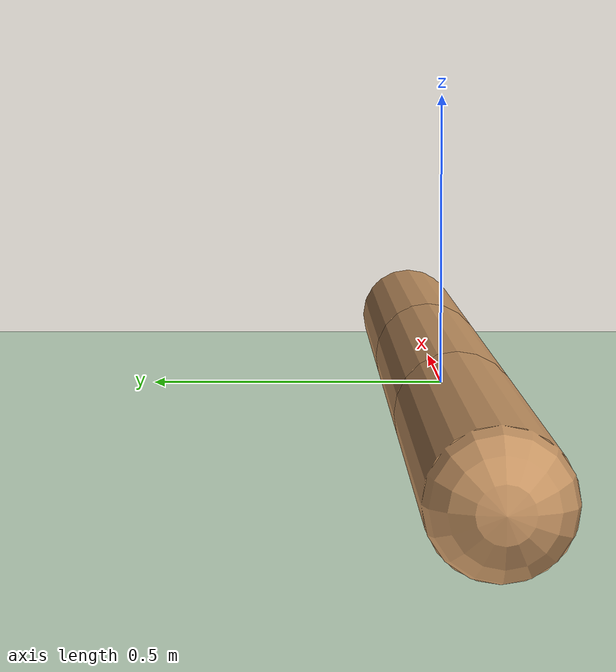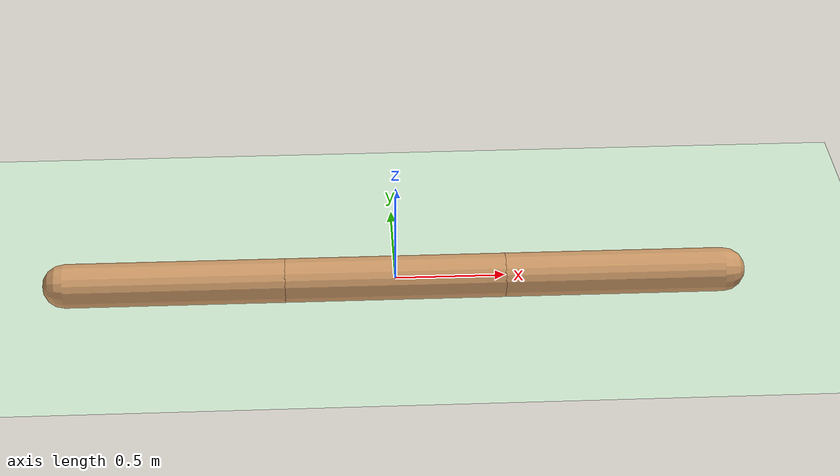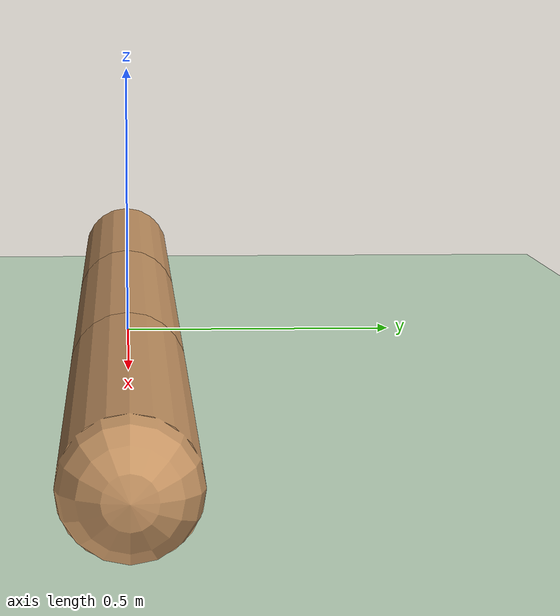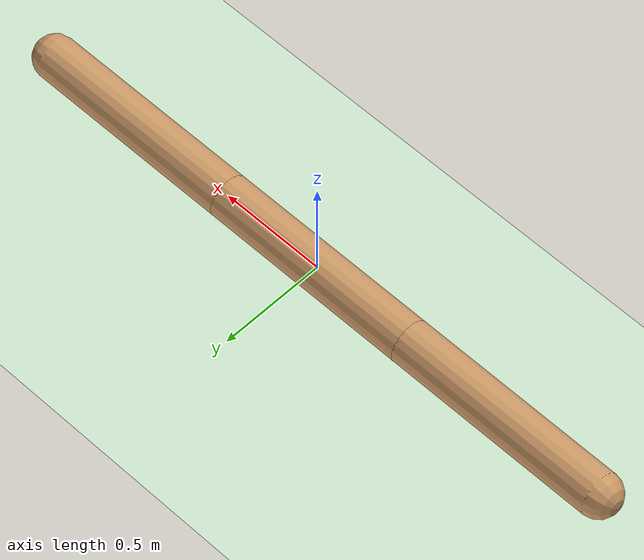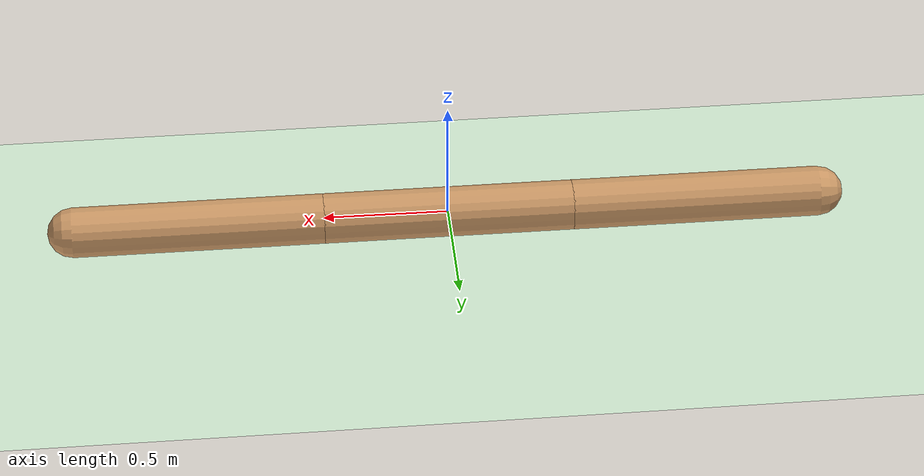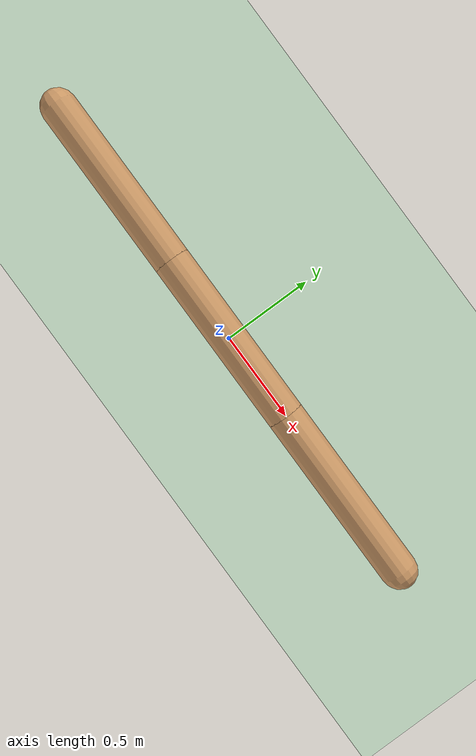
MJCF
<mujoco model="swimmer">
    <compiler angle="degree" coordinate="local" inertiafromgeom="true"/>
    <option collision="predefined" density="4000" integrator="RK4" timestep="0.01" viscosity="0.1"/>
    <default>
        <geom conaffinity="1" condim="1" contype="1" material="geom" rgba="0.8 0.6 .4 1"/>
        <joint armature='0.1'/>
    </default>
    <asset>
        <texture builtin="gradient" height="100" rgb1="1 1 1" rgb2="0 0 0" type="skybox" width="100"/>
        <texture builtin="flat" height="1278" mark="cross" markrgb="1 1 1" name="texgeom" random="0.01"
                 rgb1="0.8 0.6 0.4" rgb2="0.8 0.6 0.4" type="cube" width="127"/>
        <texture builtin="checker" height="100" name="texplane" rgb1="0 0 0" rgb2="0.8 0.8 0.8" type="2d" width="100"/>
        <material name="MatPlane" reflectance="0.5" shininess="1" specular="1" texrepeat="30 30" texture="texplane"/>
        <material name="geom" texture="texgeom" texuniform="true"/>
    </asset>
    <worldbody>
        <light cutoff="100" diffuse="1 1 1" dir="-0 0 -1.3" directional="true" exponent="1" pos="0 0 1.3"
               specular=".1 .1 .1"/>
        <geom conaffinity="1" condim="3" material="MatPlane" name="floor" pos="0 0 -0.1" rgba="0.8 0.9 0.8 1"
              size="40 40 0.1" type="plane"/>
        <!--  ================= SWIMMER ================= /-->
        <body name="torso" pos="0 0 0">
            <camera name="track" mode="trackcom" pos="0 -3 3" xyaxes="1 0 0 0 1 1"/>
            <geom density="1000" fromto="1.5 0 0 0.5 0 0" size="0.1" type="capsule"/>
            <joint axis="1 0 0" name="slider1" pos="0 0 0" type="slide"/>
            <joint axis="0 1 0" name="slider2" pos="0 0 0" type="slide"/>
            <joint axis="0 0 1" name="rot" pos="0 0 0" type="hinge"/>
            <body name="mid1" pos="0.5 0 0">
                <geom density="1000" fromto="0 0 0 -1 0 0" size=".1" type="capsule"/>
                <joint axis="0 0 1" limited="true" name="rot21" pos="0 0 0" range="-100 100" type="hinge"/>
                <body name="back1" pos="-1 0 0">
                    <geom density="1000" fromto="0 0 0 -1 0 0" size="0.1" type="capsule"/>
                    <joint axis="0 0 1" limited="true" name="rot31" pos="0 0 0" range="-100 100" type="hinge"/>
                </body>
            </body>
            <body name="mid2" pos="0.5 0 0">
                <geom density="1000" fromto="0 0 0 -1 0 0" size=".1" type="capsule"/>
                <joint axis="0 0 1" limited="true" name="rot22" pos="0 0 0" range="-100 100" type="hinge"/>
                <!--@formatter:off-->
                <body name="back2" pos="-1 0 0">
                    <geom density="1000" fromto="0 0 0 -1 0 0" size="0.1" type="capsule"/>
                    <joint axis="0 0 1" limited="true" name="rot32" pos="0 0 0" range="-100 100" type="hinge"/>
                </body>
                <!--@formatter:on-->
            </body>
        </body>
    </worldbody>
    <equality>
        <connect body1="back1" body2="back2" anchor="0 0 0"/>
    </equality>
    <actuator>
        <motor ctrllimited="true" ctrlrange="-1 1" gear="150.0" joint="rot21"/>
        <motor ctrllimited="true" ctrlrange="-1 1" gear="150.0" joint="rot31"/>
        <motor ctrllimited="true" ctrlrange="-1 1" gear="150.0" joint="rot22"/>
        <motor ctrllimited="true" ctrlrange="-1 1" gear="150.0" joint="rot32"/>
    </actuator>
</mujoco>
